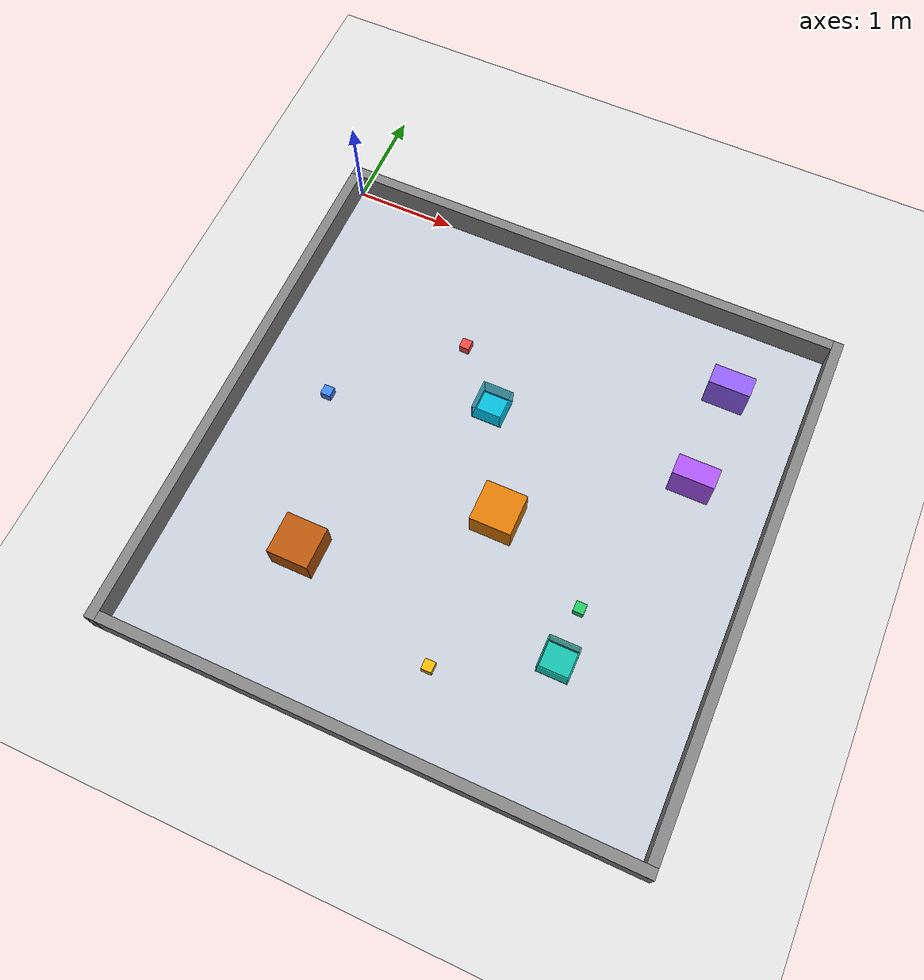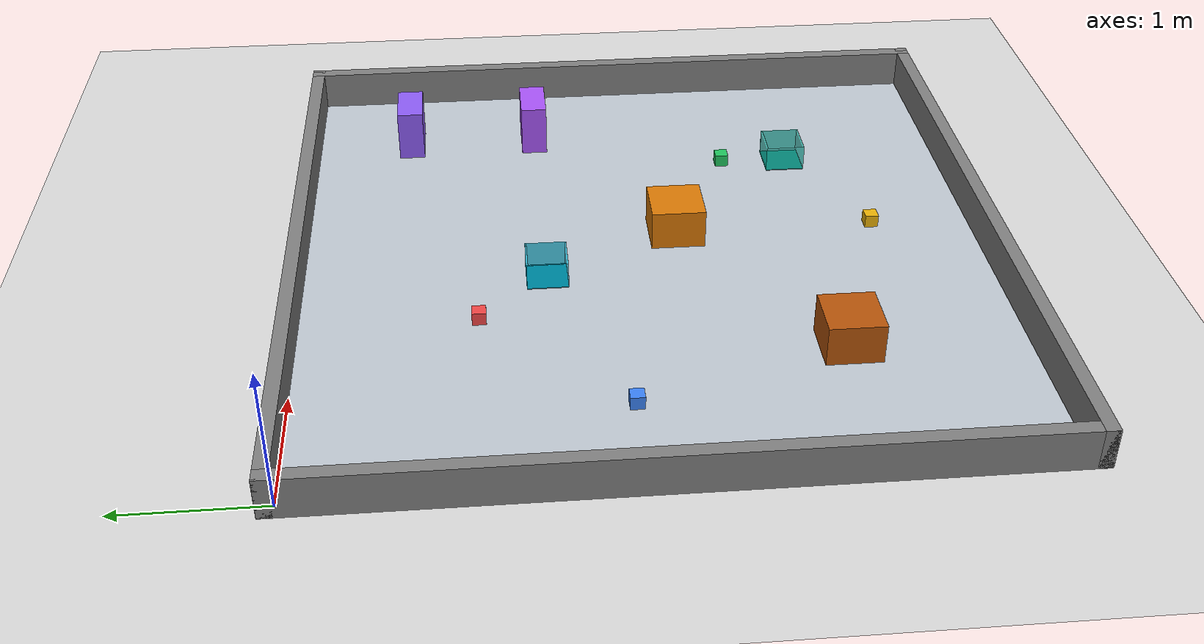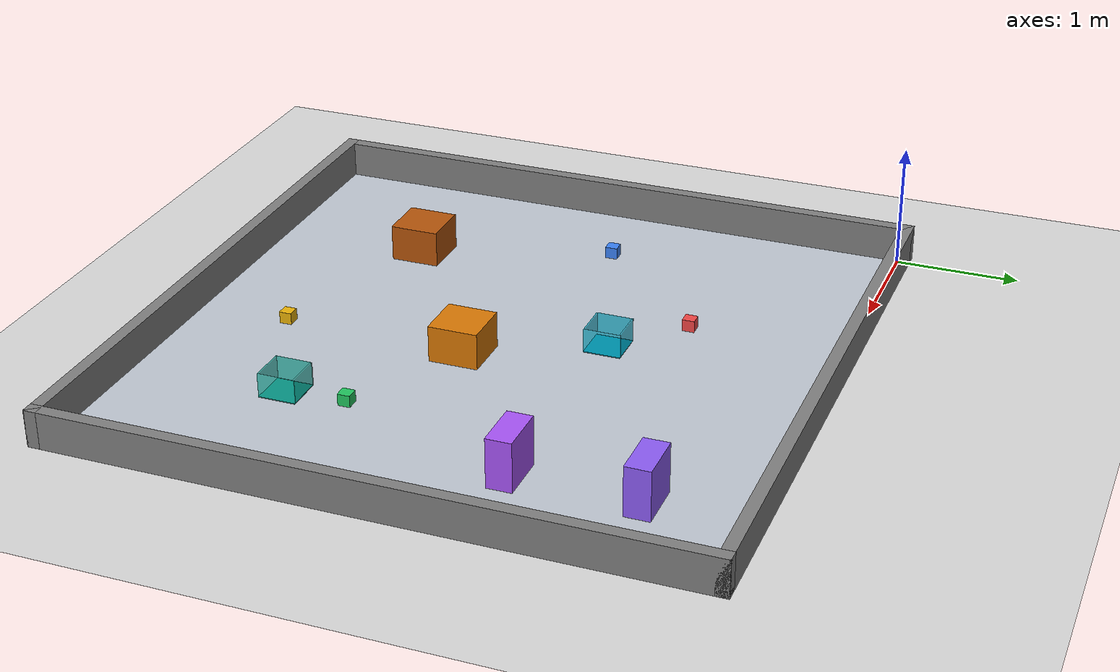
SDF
<?xml version="1.0" ?>
<sdf version="1.9">
  <world name="task_planner_world">

    <!-- Physics -->
    <physics name="default_physics" type="ode">
      <max_step_size>0.001</max_step_size>
      <real_time_factor>1.0</real_time_factor>
    </physics>

    <!-- Scene lighting -->
    <light type="directional" name="sun">
      <cast_shadows>true</cast_shadows>
      <pose>0 0 10 0 0 0</pose>
      <diffuse>0.9 0.9 0.9 1</diffuse>
      <specular>0.3 0.3 0.3 1</specular>
      <direction>-0.5 0.1 -0.9</direction>
    </light>

    <light type="point" name="fill_light">
      <pose>2.5 -2.5 5 0 0 0</pose>
      <diffuse>0.4 0.4 0.4 1</diffuse>
      <specular>0.1 0.1 0.1 1</specular>
      <attenuation>
        <range>20</range>
        <constant>0.5</constant>
        <linear>0.01</linear>
        <quadratic>0.001</quadratic>
      </attenuation>
    </light>

    <!-- Ground plane -->
    <model name="ground_plane">
      <static>true</static>
      <link name="link">
        <collision name="collision">
          <geometry>
            <plane>
              <normal>0 0 1</normal>
              <size>10 10</size>
            </plane>
          </geometry>
        </collision>
        <visual name="visual">
          <geometry>
            <plane>
              <normal>0 0 1</normal>
              <size>10 10</size>
            </plane>
          </geometry>
          <material>
            <ambient>0.85 0.85 0.85 1</ambient>
            <diffuse>0.85 0.85 0.85 1</diffuse>
          </material>
        </visual>
      </link>
    </model>

    <!-- ==================== Grid Floor Markings ==================== -->
    <model name="grid_floor">
      <static>true</static>
      <pose>2.5 -2.5 0.001 0 0 0</pose>
      <link name="link">
        <visual name="visual">
          <geometry>
            <plane>
              <normal>0 0 1</normal>
              <size>5 5</size>
            </plane>
          </geometry>
          <material>
            <ambient>0.75 0.78 0.82 1</ambient>
            <diffuse>0.75 0.78 0.82 1</diffuse>
          </material>
        </visual>
      </link>
    </model>

    <!-- ==================== Boundary Walls ==================== -->
    <!-- North wall (row = -1 side) -->
    <model name="wall_north">
      <static>true</static>
      <pose>2.5 0.05 0.15 0 0 0</pose>
      <link name="link">
        <collision name="collision">
          <geometry><box><size>5.2 0.1 0.3</size></box></geometry>
        </collision>
        <visual name="visual">
          <geometry><box><size>5.2 0.1 0.3</size></box></geometry>
          <material>
            <ambient>0.5 0.5 0.5 1</ambient>
            <diffuse>0.5 0.5 0.5 1</diffuse>
          </material>
        </visual>
      </link>
    </model>

    <!-- South wall (row = 10 side) -->
    <model name="wall_south">
      <static>true</static>
      <pose>2.5 -5.05 0.15 0 0 0</pose>
      <link name="link">
        <collision name="collision">
          <geometry><box><size>5.2 0.1 0.3</size></box></geometry>
        </collision>
        <visual name="visual">
          <geometry><box><size>5.2 0.1 0.3</size></box></geometry>
          <material>
            <ambient>0.5 0.5 0.5 1</ambient>
            <diffuse>0.5 0.5 0.5 1</diffuse>
          </material>
        </visual>
      </link>
    </model>

    <!-- West wall (col = -1 side) -->
    <model name="wall_west">
      <static>true</static>
      <pose>-0.05 -2.5 0.15 0 0 0</pose>
      <link name="link">
        <collision name="collision">
          <geometry><box><size>0.1 5.2 0.3</size></box></geometry>
        </collision>
        <visual name="visual">
          <geometry><box><size>0.1 5.2 0.3</size></box></geometry>
          <material>
            <ambient>0.5 0.5 0.5 1</ambient>
            <diffuse>0.5 0.5 0.5 1</diffuse>
          </material>
        </visual>
      </link>
    </model>

    <!-- East wall (col = 10 side) -->
    <model name="wall_east">
      <static>true</static>
      <pose>5.05 -2.5 0.15 0 0 0</pose>
      <link name="link">
        <collision name="collision">
          <geometry><box><size>0.1 5.2 0.3</size></box></geometry>
        </collision>
        <visual name="visual">
          <geometry><box><size>0.1 5.2 0.3</size></box></geometry>
          <material>
            <ambient>0.5 0.5 0.5 1</ambient>
            <diffuse>0.5 0.5 0.5 1</diffuse>
          </material>
        </visual>
      </link>
    </model>

    <!-- ==================== Objects (Boxes) ==================== -->
    <!-- Box size: 0.1m cube, sits on ground at z=0.05 -->

    <!-- red_box at grid (2,3) → world (1.75, -1.25) -->
    <model name="red_box">
      <pose>1.75 -1.25 0.05 0 0 0</pose>
      <link name="link">
        <collision name="collision">
          <geometry><box><size>0.1 0.1 0.1</size></box></geometry>
        </collision>
        <visual name="visual">
          <geometry><box><size>0.1 0.1 0.1</size></box></geometry>
          <material>
            <ambient>0.94 0.27 0.27 1</ambient>
            <diffuse>0.94 0.27 0.27 1</diffuse>
          </material>
        </visual>
        <inertial>
          <mass>0.2</mass>
          <inertia>
            <ixx>0.00003</ixx><iyy>0.00003</iyy><izz>0.00003</izz>
            <ixy>0</ixy><ixz>0</ixz><iyz>0</iyz>
          </inertia>
        </inertial>
      </link>
    </model>

    <!-- blue_box at grid (4,1) → world (0.75, -2.25) -->
    <model name="blue_box">
      <pose>0.75 -2.25 0.05 0 0 0</pose>
      <link name="link">
        <collision name="collision">
          <geometry><box><size>0.1 0.1 0.1</size></box></geometry>
        </collision>
        <visual name="visual">
          <geometry><box><size>0.1 0.1 0.1</size></box></geometry>
          <material>
            <ambient>0.23 0.51 0.96 1</ambient>
            <diffuse>0.23 0.51 0.96 1</diffuse>
          </material>
        </visual>
        <inertial>
          <mass>0.2</mass>
          <inertia>
            <ixx>0.00003</ixx><iyy>0.00003</iyy><izz>0.00003</izz>
            <ixy>0</ixy><ixz>0</ixz><iyz>0</iyz>
          </inertia>
        </inertial>
      </link>
    </model>

    <!-- green_box at grid (6,7) → world (3.75, -3.25) -->
    <model name="green_box">
      <pose>3.75 -3.25 0.05 0 0 0</pose>
      <link name="link">
        <collision name="collision">
          <geometry><box><size>0.1 0.1 0.1</size></box></geometry>
        </collision>
        <visual name="visual">
          <geometry><box><size>0.1 0.1 0.1</size></box></geometry>
          <material>
            <ambient>0.13 0.77 0.37 1</ambient>
            <diffuse>0.13 0.77 0.37 1</diffuse>
          </material>
        </visual>
        <inertial>
          <mass>0.2</mass>
          <inertia>
            <ixx>0.00003</ixx><iyy>0.00003</iyy><izz>0.00003</izz>
            <ixy>0</ixy><ixz>0</ixz><iyz>0</iyz>
          </inertia>
        </inertial>
      </link>
    </model>

    <!-- yellow_box at grid (8,5) → world (2.75, -4.25) -->
    <model name="yellow_box">
      <pose>2.75 -4.25 0.05 0 0 0</pose>
      <link name="link">
        <collision name="collision">
          <geometry><box><size>0.1 0.1 0.1</size></box></geometry>
        </collision>
        <visual name="visual">
          <geometry><box><size>0.1 0.1 0.1</size></box></geometry>
          <material>
            <ambient>0.92 0.70 0.03 1</ambient>
            <diffuse>0.92 0.70 0.03 1</diffuse>
          </material>
        </visual>
        <inertial>
          <mass>0.2</mass>
          <inertia>
            <ixx>0.00003</ixx><iyy>0.00003</iyy><izz>0.00003</izz>
            <ixy>0</ixy><ixz>0</ixz><iyz>0</iyz>
          </inertia>
        </inertial>
      </link>
    </model>

    <!-- ==================== Surfaces ==================== -->
    <!-- Shelves: 0.4m wide x 0.2m deep x 0.4m tall -->
    <!-- Tables: 0.4m wide x 0.4m deep x 0.3m tall -->

    <!-- shelf_a at grid (1,8) → world (4.25, -0.75) -->
    <model name="shelf_a">
      <static>true</static>
      <pose>4.25 -0.75 0.2 0 0 0</pose>
      <link name="link">
        <collision name="collision">
          <geometry><box><size>0.4 0.2 0.4</size></box></geometry>
        </collision>
        <visual name="visual">
          <geometry><box><size>0.4 0.2 0.4</size></box></geometry>
          <material>
            <ambient>0.55 0.36 0.96 1</ambient>
            <diffuse>0.55 0.36 0.96 1</diffuse>
          </material>
        </visual>
      </link>
    </model>

    <!-- shelf_b at grid (3,8) → world (4.25, -1.75) -->
    <model name="shelf_b">
      <static>true</static>
      <pose>4.25 -1.75 0.2 0 0 0</pose>
      <link name="link">
        <collision name="collision">
          <geometry><box><size>0.4 0.2 0.4</size></box></geometry>
        </collision>
        <visual name="visual">
          <geometry><box><size>0.4 0.2 0.4</size></box></geometry>
          <material>
            <ambient>0.66 0.33 0.97 1</ambient>
            <diffuse>0.66 0.33 0.97 1</diffuse>
          </material>
        </visual>
      </link>
    </model>

    <!-- table_1 at grid (5,5) → world (2.75, -2.75) -->
    <model name="table_1">
      <static>true</static>
      <pose>2.75 -2.75 0.15 0 0 0</pose>
      <link name="link">
        <collision name="collision">
          <geometry><box><size>0.4 0.4 0.3</size></box></geometry>
        </collision>
        <visual name="visual">
          <geometry><box><size>0.4 0.4 0.3</size></box></geometry>
          <material>
            <ambient>0.85 0.47 0.02 1</ambient>
            <diffuse>0.85 0.47 0.02 1</diffuse>
          </material>
        </visual>
      </link>
    </model>

    <!-- table_2 at grid (7,2) → world (1.25, -3.75) -->
    <model name="table_2">
      <static>true</static>
      <pose>1.25 -3.75 0.15 0 0 0</pose>
      <link name="link">
        <collision name="collision">
          <geometry><box><size>0.4 0.4 0.3</size></box></geometry>
        </collision>
        <visual name="visual">
          <geometry><box><size>0.4 0.4 0.3</size></box></geometry>
          <material>
            <ambient>0.71 0.33 0.04 1</ambient>
            <diffuse>0.71 0.33 0.04 1</diffuse>
          </material>
        </visual>
      </link>
    </model>

    <!-- ==================== Containers ==================== -->
    <!-- Open-top boxes: 0.3m x 0.3m x 0.2m, with 4 walls and no top -->

    <!-- container_a at grid (3,4) → world (2.25, -1.75) -->
    <model name="container_a">
      <static>true</static>
      <pose>2.25 -1.75 0.0 0 0 0</pose>
      <link name="link">
        <!-- Floor -->
        <collision name="floor_col">
          <pose>0 0 0.005 0 0 0</pose>
          <geometry><box><size>0.3 0.3 0.01</size></box></geometry>
        </collision>
        <visual name="floor_vis">
          <pose>0 0 0.005 0 0 0</pose>
          <geometry><box><size>0.3 0.3 0.01</size></box></geometry>
          <material>
            <ambient>0.02 0.71 0.83 1</ambient>
            <diffuse>0.02 0.71 0.83 1</diffuse>
          </material>
        </visual>
        <!-- Front wall -->
        <collision name="front_col">
          <pose>0.145 0 0.1 0 0 0</pose>
          <geometry><box><size>0.01 0.3 0.2</size></box></geometry>
        </collision>
        <visual name="front_vis">
          <pose>0.145 0 0.1 0 0 0</pose>
          <geometry><box><size>0.01 0.3 0.2</size></box></geometry>
          <material>
            <ambient>0.02 0.71 0.83 0.7</ambient>
            <diffuse>0.02 0.71 0.83 0.7</diffuse>
          </material>
        </visual>
        <!-- Back wall -->
        <collision name="back_col">
          <pose>-0.145 0 0.1 0 0 0</pose>
          <geometry><box><size>0.01 0.3 0.2</size></box></geometry>
        </collision>
        <visual name="back_vis">
          <pose>-0.145 0 0.1 0 0 0</pose>
          <geometry><box><size>0.01 0.3 0.2</size></box></geometry>
          <material>
            <ambient>0.02 0.71 0.83 0.7</ambient>
            <diffuse>0.02 0.71 0.83 0.7</diffuse>
          </material>
        </visual>
        <!-- Left wall -->
        <collision name="left_col">
          <pose>0 0.145 0.1 0 0 0</pose>
          <geometry><box><size>0.28 0.01 0.2</size></box></geometry>
        </collision>
        <visual name="left_vis">
          <pose>0 0.145 0.1 0 0 0</pose>
          <geometry><box><size>0.28 0.01 0.2</size></box></geometry>
          <material>
            <ambient>0.02 0.71 0.83 0.7</ambient>
            <diffuse>0.02 0.71 0.83 0.7</diffuse>
          </material>
        </visual>
        <!-- Right wall -->
        <collision name="right_col">
          <pose>0 -0.145 0.1 0 0 0</pose>
          <geometry><box><size>0.28 0.01 0.2</size></box></geometry>
        </collision>
        <visual name="right_vis">
          <pose>0 -0.145 0.1 0 0 0</pose>
          <geometry><box><size>0.28 0.01 0.2</size></box></geometry>
          <material>
            <ambient>0.02 0.71 0.83 0.7</ambient>
            <diffuse>0.02 0.71 0.83 0.7</diffuse>
          </material>
        </visual>
      </link>
    </model>

    <!-- container_b at grid (7,7) → world (3.75, -3.75) -->
    <model name="container_b">
      <static>true</static>
      <pose>3.75 -3.75 0.0 0 0 0</pose>
      <link name="link">
        <!-- Floor -->
        <collision name="floor_col">
          <pose>0 0 0.005 0 0 0</pose>
          <geometry><box><size>0.3 0.3 0.01</size></box></geometry>
        </collision>
        <visual name="floor_vis">
          <pose>0 0 0.005 0 0 0</pose>
          <geometry><box><size>0.3 0.3 0.01</size></box></geometry>
          <material>
            <ambient>0.08 0.72 0.65 1</ambient>
            <diffuse>0.08 0.72 0.65 1</diffuse>
          </material>
        </visual>
        <!-- Front wall -->
        <collision name="front_col">
          <pose>0.145 0 0.1 0 0 0</pose>
          <geometry><box><size>0.01 0.3 0.2</size></box></geometry>
        </collision>
        <visual name="front_vis">
          <pose>0.145 0 0.1 0 0 0</pose>
          <geometry><box><size>0.01 0.3 0.2</size></box></geometry>
          <material>
            <ambient>0.08 0.72 0.65 0.7</ambient>
            <diffuse>0.08 0.72 0.65 0.7</diffuse>
          </material>
        </visual>
        <!-- Back wall -->
        <collision name="back_col">
          <pose>-0.145 0 0.1 0 0 0</pose>
          <geometry><box><size>0.01 0.3 0.2</size></box></geometry>
        </collision>
        <visual name="back_vis">
          <pose>-0.145 0 0.1 0 0 0</pose>
          <geometry><box><size>0.01 0.3 0.2</size></box></geometry>
          <material>
            <ambient>0.08 0.72 0.65 0.7</ambient>
            <diffuse>0.08 0.72 0.65 0.7</diffuse>
          </material>
        </visual>
        <!-- Left wall -->
        <collision name="left_col">
          <pose>0 0.145 0.1 0 0 0</pose>
          <geometry><box><size>0.28 0.01 0.2</size></box></geometry>
        </collision>
        <visual name="left_vis">
          <pose>0 0.145 0.1 0 0 0</pose>
          <geometry><box><size>0.28 0.01 0.2</size></box></geometry>
          <material>
            <ambient>0.08 0.72 0.65 0.7</ambient>
            <diffuse>0.08 0.72 0.65 0.7</diffuse>
          </material>
        </visual>
        <!-- Right wall -->
        <collision name="right_col">
          <pose>0 -0.145 0.1 0 0 0</pose>
          <geometry><box><size>0.28 0.01 0.2</size></box></geometry>
        </collision>
        <visual name="right_vis">
          <pose>0 -0.145 0.1 0 0 0</pose>
          <geometry><box><size>0.28 0.01 0.2</size></box></geometry>
          <material>
            <ambient>0.08 0.72 0.65 0.7</ambient>
            <diffuse>0.08 0.72 0.65 0.7</diffuse>
          </material>
        </visual>
      </link>
    </model>

    <!-- Robot is spawned via entrypoint script after world loads -->

  </world>
</sdf>
